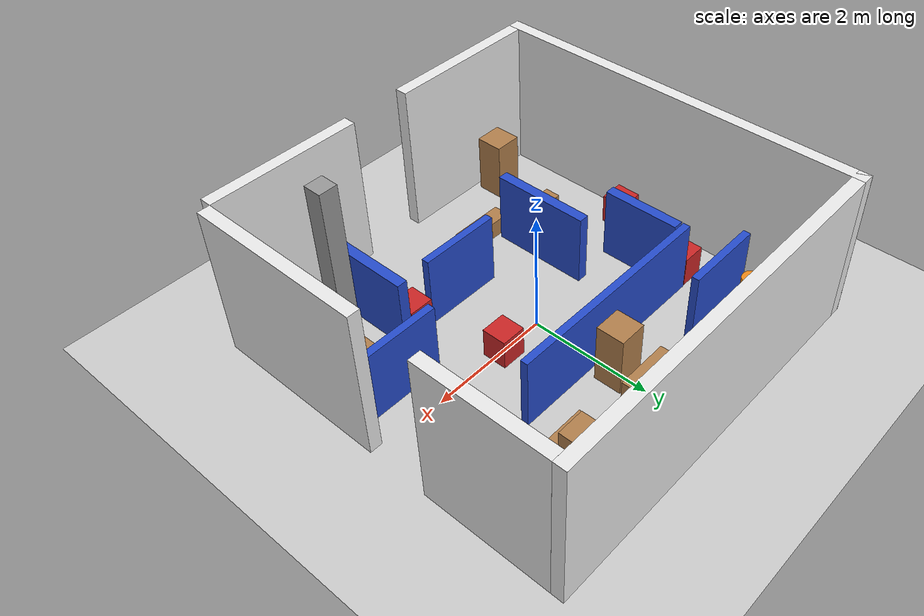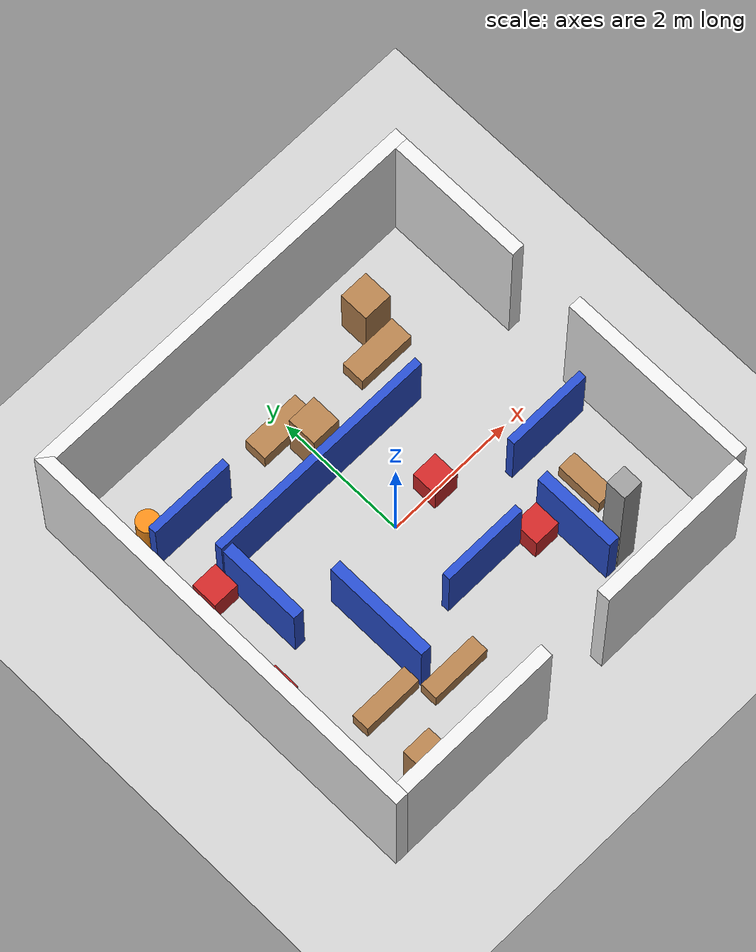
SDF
<sdf version="1.7">
 <world name="default">
  <light name="sun" type="directional">
   <pose>0 0 10 0 -0 0</pose>
   <diffuse>0.8 0.8 0.8 1</diffuse>
   <specular>0.2 0.2 0.2 1</specular>
   <attenuation>
    <range>1000</range>
    <constant>0.9</constant>
    <linear>0.01</linear>
    <quadratic>0.001</quadratic>
   </attenuation>
   <direction>-0.5 0.1 -0.9</direction>
   <spot><inner_angle>0</inner_angle><outer_angle>0</outer_angle><falloff>0</falloff></spot>
  </light>
  <model name="ground_plane">
   <static>1</static>
   <link name="link">
    <collision name="collision">
     <geometry><plane><normal>0 0 1</normal><size>20 20</size></plane></geometry>
     <surface>
      <contact><collide_bitmask>65535</collide_bitmask></contact>
      <friction><ode><mu>100</mu><mu2>50</mu2></ode></friction>
     </surface>
    </collision>
    <visual name="visual">
     <cast_shadows>0</cast_shadows>
     <geometry><plane><normal>0 0 1</normal><size>20 20</size></plane></geometry>
     <material>
      <script><uri>file://media/materials/scripts/gazebo.material</uri><name>Gazebo/Grey</name></script>
     </material>
    </visual>
   </link>
  </model>
  <model name="wall_north">
   <static>1</static>
   <pose>0 3.1 1.25 0 0 0</pose>
   <link name="link">
    <collision name="collision"><geometry><box><size>6.4 0.2 2.5</size></box></geometry></collision>
    <visual name="visual">
     <geometry><box><size>6.4 0.2 2.5</size></box></geometry>
     <material>
      <script><uri>file://media/materials/scripts/gazebo.material</uri><name>Gazebo/White</name></script>
     </material>
    </visual>
   </link>
  </model>
  <model name="wall_south_left">
   <static>1</static>
   <pose>-1.738 -3.1 1.25 0 0 0</pose>
   <link name="link">
    <collision name="collision"><geometry><box><size>2.524 0.2 2.5</size></box></geometry></collision>
    <visual name="visual">
     <geometry><box><size>2.524 0.2 2.5</size></box></geometry>
     <material>
      <script><uri>file://media/materials/scripts/gazebo.material</uri><name>Gazebo/White</name></script>
     </material>
    </visual>
   </link>
  </model>
  <model name="wall_south_right">
   <static>1</static>
   <pose>1.762 -3.1 1.25 0 0 0</pose>
   <link name="link">
    <collision name="collision"><geometry><box><size>2.476 0.2 2.5</size></box></geometry></collision>
    <visual name="visual">
     <geometry><box><size>2.476 0.2 2.5</size></box></geometry>
     <material>
      <script><uri>file://media/materials/scripts/gazebo.material</uri><name>Gazebo/White</name></script>
     </material>
    </visual>
   </link>
  </model>
  <model name="wall_west">
   <static>1</static>
   <pose>-3.1 0 1.25 0 0 0</pose>
   <link name="link">
    <collision name="collision"><geometry><box><size>0.2 6.4 2.5</size></box></geometry></collision>
    <visual name="visual">
     <geometry><box><size>0.2 6.4 2.5</size></box></geometry>
     <material>
      <script><uri>file://media/materials/scripts/gazebo.material</uri><name>Gazebo/White</name></script>
     </material>
    </visual>
   </link>
  </model>
  <model name="wall_east_top">
   <static>1</static>
   <pose>3.1 1.952 1.25 0 0 0</pose>
   <link name="link">
    <collision name="collision"><geometry><box><size>0.2 2.095 2.5</size></box></geometry></collision>
    <visual name="visual">
     <geometry><box><size>0.2 2.095 2.5</size></box></geometry>
     <material>
      <script><uri>file://media/materials/scripts/gazebo.material</uri><name>Gazebo/White</name></script>
     </material>
    </visual>
   </link>
  </model>
  <model name="wall_east_bottom">
   <static>1</static>
   <pose>3.1 -1.548 1.25 0 0 0</pose>
   <link name="link">
    <collision name="collision"><geometry><box><size>0.2 2.905 2.5</size></box></geometry></collision>
    <visual name="visual">
     <geometry><box><size>0.2 2.905 2.5</size></box></geometry>
     <material>
      <script><uri>file://media/materials/scripts/gazebo.material</uri><name>Gazebo/White</name></script>
     </material>
    </visual>
   </link>
  </model>
  <model name="divider_main">
   <static>1</static>
   <pose>-0.287 1.103 0.6 0 0 0</pose>
   <link name="link">
    <collision name="collision"><geometry><box><size>3.595 0.12 1.2</size></box></geometry></collision>
    <visual name="visual">
     <geometry><box><size>3.595 0.12 1.2</size></box></geometry>
     <material>
      <script><uri>file://media/materials/scripts/gazebo.material</uri><name>Gazebo/Blue</name></script>
     </material>
    </visual>
   </link>
  </model>
  <model name="divider_short1">
   <static>1</static>
   <pose>-1.868 1.855 0.6 0 0 0</pose>
   <link name="link">
    <collision name="collision"><geometry><box><size>1.317 0.12 1.2</size></box></geometry></collision>
    <visual name="visual">
     <geometry><box><size>1.317 0.12 1.2</size></box></geometry>
     <material>
      <script><uri>file://media/materials/scripts/gazebo.material</uri><name>Gazebo/Blue</name></script>
     </material>
    </visual>
   </link>
  </model>
  <model name="divider_short2">
   <static>1</static>
   <pose>2.215 -0.518 0.6 0 0 0</pose>
   <link name="link">
    <collision name="collision"><geometry><box><size>1.317 0.12 1.2</size></box></geometry></collision>
    <visual name="visual">
     <geometry><box><size>1.317 0.12 1.2</size></box></geometry>
     <material>
      <script><uri>file://media/materials/scripts/gazebo.material</uri><name>Gazebo/Blue</name></script>
     </material>
    </visual>
   </link>
  </model>
  <model name="divider_short3">
   <static>1</static>
   <pose>0.326 -1.227 0.6 0 0 0</pose>
   <link name="link">
    <collision name="collision"><geometry><box><size>1.317 0.12 1.2</size></box></geometry></collision>
    <visual name="visual">
     <geometry><box><size>1.317 0.12 1.2</size></box></geometry>
     <material>
      <script><uri>file://media/materials/scripts/gazebo.material</uri><name>Gazebo/Blue</name></script>
     </material>
    </visual>
   </link>
  </model>
  <model name="divider_vert1">
   <static>1</static>
   <pose>-2.005 0.370 0.6 0 0 0</pose>
   <link name="link">
    <collision name="collision"><geometry><box><size>0.17 1.275 1.2</size></box></geometry></collision>
    <visual name="visual">
     <geometry><box><size>0.17 1.275 1.2</size></box></geometry>
     <material>
      <script><uri>file://media/materials/scripts/gazebo.material</uri><name>Gazebo/Blue</name></script>
     </material>
    </visual>
   </link>
  </model>
  <model name="divider_vert2">
   <static>1</static>
   <pose>-1.212 -0.937 0.6 0 0 0</pose>
   <link name="link">
    <collision name="collision"><geometry><box><size>0.17 1.623 1.2</size></box></geometry></collision>
    <visual name="visual">
     <geometry><box><size>0.17 1.623 1.2</size></box></geometry>
     <material>
      <script><uri>file://media/materials/scripts/gazebo.material</uri><name>Gazebo/Blue</name></script>
     </material>
    </visual>
   </link>
  </model>
  <model name="divider_vert3">
   <static>1</static>
   <pose>1.513 -1.767 0.6 0 0 0</pose>
   <link name="link">
    <collision name="collision"><geometry><box><size>0.17 1.275 1.2</size></box></geometry></collision>
    <visual name="visual">
     <geometry><box><size>0.17 1.275 1.2</size></box></geometry>
     <material>
      <script><uri>file://media/materials/scripts/gazebo.material</uri><name>Gazebo/Blue</name></script>
     </material>
    </visual>
   </link>
  </model>
  <model name="shelf_sw1">
   <static>1</static>
   <pose>-1.798 -1.618 0.15 0 0 0</pose>
   <link name="link">
    <collision name="collision"><geometry><box><size>0.927 0.267 0.3</size></box></geometry></collision>
    <visual name="visual">
     <geometry><box><size>0.927 0.267 0.3</size></box></geometry>
     <material>
      <script><uri>file://media/materials/scripts/gazebo.material</uri><name>Gazebo/Wood</name></script>
     </material>
    </visual>
   </link>
  </model>
  <model name="shelf_sw2">
   <static>1</static>
   <pose>-0.890 -1.942 0.15 0 0 0</pose>
   <link name="link">
    <collision name="collision"><geometry><box><size>0.927 0.267 0.3</size></box></geometry></collision>
    <visual name="visual">
     <geometry><box><size>0.927 0.267 0.3</size></box></geometry>
     <material>
      <script><uri>file://media/materials/scripts/gazebo.material</uri><name>Gazebo/Wood</name></script>
     </material>
    </visual>
   </link>
  </model>
  <model name="shelf_nw1">
   <static>1</static>
   <pose>1.501 1.842 0.15 0 0 0</pose>
   <link name="link">
    <collision name="collision"><geometry><box><size>0.905 0.357 0.3</size></box></geometry></collision>
    <visual name="visual">
     <geometry><box><size>0.905 0.357 0.3</size></box></geometry>
     <material>
      <script><uri>file://media/materials/scripts/gazebo.material</uri><name>Gazebo/Wood</name></script>
     </material>
    </visual>
   </link>
  </model>
  <model name="shelf_nw2">
   <static>1</static>
   <pose>-0.148 1.976 0.15 0 0 0</pose>
   <link name="link">
    <collision name="collision"><geometry><box><size>0.905 0.357 0.3</size></box></geometry></collision>
    <visual name="visual">
     <geometry><box><size>0.905 0.357 0.3</size></box></geometry>
     <material>
      <script><uri>file://media/materials/scripts/gazebo.material</uri><name>Gazebo/Wood</name></script>
     </material>
    </visual>
   </link>
  </model>
  <model name="shelf_mid">
   <static>1</static>
   <pose>2.151 -1.340 0.15 0 0 0</pose>
   <link name="link">
    <collision name="collision"><geometry><box><size>0.288 0.727 0.3</size></box></geometry></collision>
    <visual name="visual">
     <geometry><box><size>0.288 0.727 0.3</size></box></geometry>
     <material>
      <script><uri>file://media/materials/scripts/gazebo.material</uri><name>Gazebo/Wood</name></script>
     </material>
    </visual>
   </link>
  </model>
  <model name="box1">
   <static>1</static>
   <pose>1.191 -1.360 0.25 0 0 0</pose>
   <link name="link">
    <collision name="collision"><geometry><box><size>0.405 0.405 0.5</size></box></geometry></collision>
    <visual name="visual">
     <geometry><box><size>0.405 0.405 0.5</size></box></geometry>
     <material>
      <script><uri>file://media/materials/scripts/gazebo.material</uri><name>Gazebo/Red</name></script>
     </material>
    </visual>
   </link>
  </model>
  <model name="box2">
   <static>1</static>
   <pose>0.751 0.031 0.25 0 0 0</pose>
   <link name="link">
    <collision name="collision"><geometry><box><size>0.405 0.405 0.5</size></box></geometry></collision>
    <visual name="visual">
     <geometry><box><size>0.405 0.405 0.5</size></box></geometry>
     <material>
      <script><uri>file://media/materials/scripts/gazebo.material</uri><name>Gazebo/Red</name></script>
     </material>
    </visual>
   </link>
  </model>
  <model name="box3">
   <static>1</static>
   <pose>-2.315 0.953 0.25 0 0 0</pose>
   <link name="link">
    <collision name="collision"><geometry><box><size>0.405 0.405 0.5</size></box></geometry></collision>
    <visual name="visual">
     <geometry><box><size>0.405 0.405 0.5</size></box></geometry>
     <material>
      <script><uri>file://media/materials/scripts/gazebo.material</uri><name>Gazebo/Red</name></script>
     </material>
    </visual>
   </link>
  </model>
  <model name="box4">
   <static>1</static>
   <pose>-2.729 -0.561 0.25 0 0 0</pose>
   <link name="link">
    <collision name="collision"><geometry><box><size>0.405 0.405 0.5</size></box></geometry></collision>
    <visual name="visual">
     <geometry><box><size>0.405 0.405 0.5</size></box></geometry>
     <material>
      <script><uri>file://media/materials/scripts/gazebo.material</uri><name>Gazebo/Red</name></script>
     </material>
    </visual>
   </link>
  </model>
  <model name="pillar1">
   <static>1</static>
   <pose>1.787 -2.241 1.25 0 0 0</pose>
   <link name="link">
    <collision name="collision"><geometry><box><size>0.310 0.310 2.5</size></box></geometry></collision>
    <visual name="visual">
     <geometry><box><size>0.310 0.310 2.5</size></box></geometry>
     <material>
      <script><uri>file://media/materials/scripts/gazebo.material</uri><name>Gazebo/Grey</name></script>
     </material>
    </visual>
   </link>
  </model>
  <model name="cabinet_nw1">
   <static>1</static>
   <pose>1.731 2.280 0.5 0 0 0</pose>
   <link name="link">
    <collision name="collision"><geometry><box><size>0.452 0.452 1.0</size></box></geometry></collision>
    <visual name="visual">
     <geometry><box><size>0.452 0.452 1.0</size></box></geometry>
     <material>
      <script><uri>file://media/materials/scripts/gazebo.material</uri><name>Gazebo/WoodPallet</name></script>
     </material>
    </visual>
   </link>
  </model>
  <model name="cabinet_ne1">
   <static>1</static>
   <pose>0.037 1.523 0.5 0 0 0</pose>
   <link name="link">
    <collision name="collision"><geometry><box><size>0.452 0.452 1.0</size></box></geometry></collision>
    <visual name="visual">
     <geometry><box><size>0.452 0.452 1.0</size></box></geometry>
     <material>
      <script><uri>file://media/materials/scripts/gazebo.material</uri><name>Gazebo/WoodPallet</name></script>
     </material>
    </visual>
   </link>
  </model>
  <model name="cabinet_sw1">
   <static>1</static>
   <pose>-2.088 -2.668 0.5 0 0 0</pose>
   <link name="link">
    <collision name="collision"><geometry><box><size>0.452 0.452 1.0</size></box></geometry></collision>
    <visual name="visual">
     <geometry><box><size>0.452 0.452 1.0</size></box></geometry>
     <material>
      <script><uri>file://media/materials/scripts/gazebo.material</uri><name>Gazebo/WoodPallet</name></script>
     </material>
    </visual>
   </link>
  </model>
  <model name="cylinder1">
   <static>1</static>
   <pose>-2.340 2.162 0.3 0 0 0</pose>
   <link name="link">
    <collision name="collision">
     <geometry><cylinder><radius>0.167</radius><length>0.6</length></cylinder></geometry>
    </collision>
    <visual name="visual">
     <geometry><cylinder><radius>0.167</radius><length>0.6</length></cylinder></geometry>
     <material>
      <script><uri>file://media/materials/scripts/gazebo.material</uri><name>Gazebo/Orange</name></script>
     </material>
    </visual>
   </link>
  </model>
  <gravity>0 0 -9.8</gravity>
  <magnetic_field>6e-06 2.3e-05 -4.2e-05</magnetic_field>
  <atmosphere type="adiabatic"/>
  <physics type="ode">
   <max_step_size>0.001</max_step_size>
   <real_time_factor>1</real_time_factor>
   <real_time_update_rate>1000</real_time_update_rate>
  </physics>
  <scene><ambient>0.4 0.4 0.4 1</ambient><background>0.7 0.7 0.7 1</background><shadows>1</shadows></scene>
  <spherical_coordinates>
   <surface_model>EARTH_WGS84</surface_model>
   <latitude_deg>0</latitude_deg>
   <longitude_deg>0</longitude_deg>
   <elevation>0</elevation>
   <heading_deg>0</heading_deg>
  </spherical_coordinates>
 </world>
</sdf>
